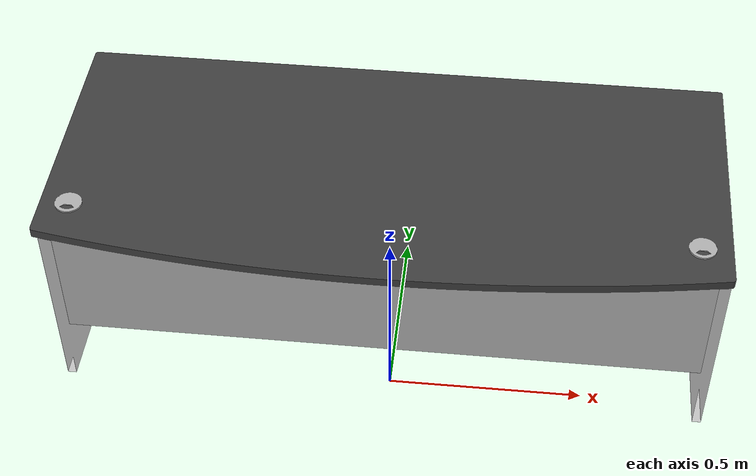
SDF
<?xml version="1.0"?>
<sdf version="1.4">
  <model name="desk_2">
    <static>true</static>
    <link name="link">
      <pose>0 0 0 0 0 0</pose>
      <collision name="collision">
        <geometry>
          <mesh>
             <uri>model://desk_2/desk_2_collision.dae</uri>
	     <scale>0.7 0.7 0.7</scale>
          </mesh>
        </geometry>
      </collision>
      <visual name="visual">
         <geometry>
          <mesh>
            <uri>model://desk_2/desk_2_visual.dae</uri>
		<scale>0.7 0.7 0.7</scale>
          </mesh>
        </geometry>
      </visual>
    </link>
  </model>
</sdf>
